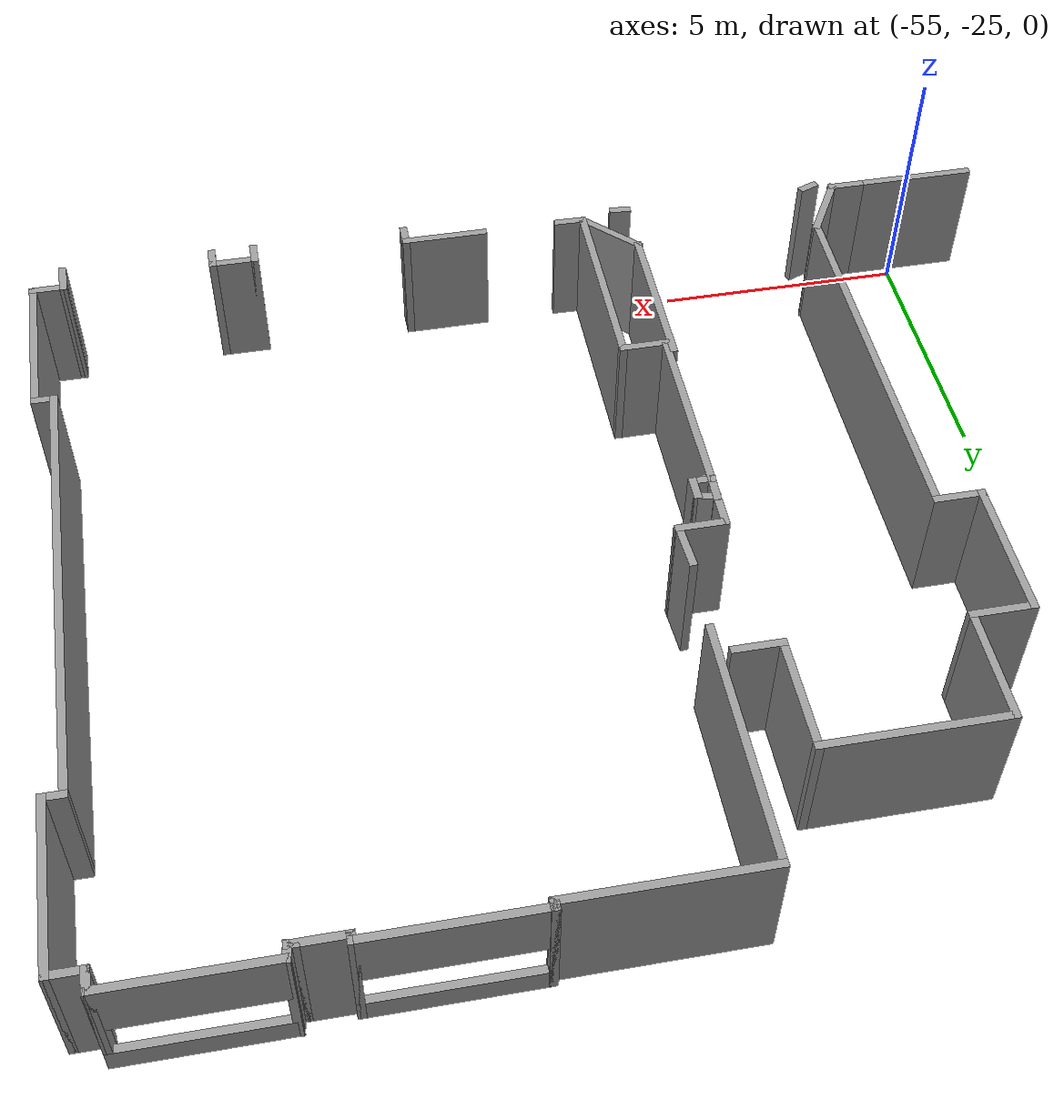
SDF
<sdf version="1.7">
 <model name="TD_n1">
  <pose>-28.4203 -15.5404 0 0 -0 0</pose>
  <link name="Wall_10">
   <collision name="Wall_10_Collision">
    <geometry><box><size>3.25 0.15 2.5</size></box></geometry>
    <pose>0 0 1.25 0 -0 0</pose>
   </collision>
   <visual name="Wall_10_Visual">
    <pose>0 0 1.25 0 -0 0</pose>
    <geometry><box><size>3.25 0.15 2.5</size></box></geometry>
    <material>
     <script><uri>file://media/materials/scripts/gazebo.material</uri><name>Gazebo/Grey</name></script>
     <ambient>1 1 1 1</ambient>
    </material>
    <meta><layer>0</layer></meta>
   </visual>
   <pose>-8.40541 -7.90104 0 0 -0 -1.5708</pose>
  </link>
  <link name="Wall_104">
   <collision name="Wall_104_Collision">
    <geometry><box><size>0.437291 0.15 2.5</size></box></geometry>
    <pose>0 0 1.25 0 -0 0</pose>
   </collision>
   <visual name="Wall_104_Visual">
    <pose>0 0 1.25 0 -0 0</pose>
    <geometry><box><size>0.437291 0.15 2.5</size></box></geometry>
    <material>
     <script><uri>file://media/materials/scripts/gazebo.material</uri><name>Gazebo/Grey</name></script>
     <ambient>1 1 1 1</ambient>
    </material>
    <meta><layer>0</layer></meta>
   </visual>
   <pose>-20.4746 -9.7842 0 0 -0 -0.104877</pose>
  </link>
  <link name="Wall_15">
   <collision name="Wall_15_Collision">
    <geometry><box><size>0.75 0.15 2.5</size></box></geometry>
    <pose>0 0 1.25 0 -0 0</pose>
   </collision>
   <visual name="Wall_15_Visual">
    <pose>0 0 1.25 0 -0 0</pose>
    <geometry><box><size>0.75 0.15 2.5</size></box></geometry>
    <material>
     <script><uri>file://media/materials/scripts/gazebo.material</uri><name>Gazebo/Grey</name></script>
     <ambient>1 1 1 1</ambient>
    </material>
    <meta><layer>0</layer></meta>
   </visual>
   <pose>-8.70541 -9.45104 0 0 -0 0</pose>
  </link>
  <link name="Wall_17">
   <collision name="Wall_17_Collision">
    <geometry><box><size>0.658615 0.15 2.5</size></box></geometry>
    <pose>0 0 1.25 0 -0 0</pose>
   </collision>
   <visual name="Wall_17_Visual">
    <pose>0 0 1.25 0 -0 0</pose>
    <geometry><box><size>0.658615 0.15 2.5</size></box></geometry>
    <material>
     <script><uri>file://media/materials/scripts/gazebo.material</uri><name>Gazebo/Grey</name></script>
     <ambient>1 1 1 1</ambient>
    </material>
    <meta><layer>0</layer></meta>
   </visual>
   <pose>-9.00103 -9.70531 0 0 -0 1.588</pose>
  </link>
  <link name="Wall_2">
   <pose>-10.4734 5.94896 0 0 -0 0</pose>
   <visual name="Wall_2_Visual_0">
    <pose>-1.52604 0 1.25 0 -0 0</pose>
    <geometry><box><size>0.033869 0.15 2.5</size></box></geometry>
    <material>
     <script><uri>file://media/materials/scripts/gazebo.material</uri><name>Gazebo/Grey</name></script>
     <ambient>1 1 1 1</ambient>
    </material>
    <meta><layer>0</layer></meta>
   </visual>
   <collision name="Wall_2_Collision_0">
    <geometry><box><size>0.033869 0.15 2.5</size></box></geometry>
    <pose>-1.52604 0 1.25 0 -0 0</pose>
   </collision>
   <visual name="Wall_2_Visual_1">
    <pose>0.016935 0 0.25 0 -0 0</pose>
    <geometry><box><size>3.05208 0.15 0.5</size></box></geometry>
    <material>
     <script><uri>file://media/materials/scripts/gazebo.material</uri><name>Gazebo/Grey</name></script>
     <ambient>1 1 1 1</ambient>
    </material>
    <meta><layer>0</layer></meta>
   </visual>
   <collision name="Wall_2_Collision_1">
    <geometry><box><size>3.05208 0.15 0.5</size></box></geometry>
    <pose>0.016935 0 0.25 0 -0 0</pose>
   </collision>
   <visual name="Wall_2_Visual_2">
    <pose>1.51693 0 1.5 0 -0 0</pose>
    <geometry><box><size>0.052081 0.15 2</size></box></geometry>
    <material>
     <script><uri>file://media/materials/scripts/gazebo.material</uri><name>Gazebo/Grey</name></script>
     <ambient>1 1 1 1</ambient>
    </material>
    <meta><layer>0</layer></meta>
   </visual>
   <collision name="Wall_2_Collision_2">
    <geometry><box><size>0.052081 0.15 2</size></box></geometry>
    <pose>1.51693 0 1.5 0 -0 0</pose>
   </collision>
   <visual name="Wall_2_Visual_3">
    <pose>-0.009106 0 1.9 0 -0 0</pose>
    <geometry><box><size>3 0.15 1.2</size></box></geometry>
    <material>
     <script><uri>file://media/materials/scripts/gazebo.material</uri><name>Gazebo/Grey</name></script>
     <ambient>1 1 1 1</ambient>
    </material>
    <meta><layer>0</layer></meta>
   </visual>
   <collision name="Wall_2_Collision_3">
    <geometry><box><size>3 0.15 1.2</size></box></geometry>
    <pose>-0.009106 0 1.9 0 -0 0</pose>
   </collision>
  </link>
  <link name="Wall_21">
   <collision name="Wall_21_Collision">
    <geometry><box><size>0.5 0.15 2.5</size></box></geometry>
    <pose>0 0 1.25 0 -0 0</pose>
   </collision>
   <visual name="Wall_21_Visual">
    <pose>0 0 1.25 0 -0 0</pose>
    <geometry><box><size>0.5 0.15 2.5</size></box></geometry>
    <material>
     <script><uri>file://media/materials/scripts/gazebo.material</uri><name>Gazebo/Grey</name></script>
     <ambient>1 1 1 1</ambient>
    </material>
    <meta><layer>0</layer></meta>
   </visual>
   <pose>-11.9967 -9.78458 0 0 -0 1.5708</pose>
  </link>
  <link name="Wall_22">
   <collision name="Wall_22_Collision">
    <geometry><box><size>1 0.15 2.5</size></box></geometry>
    <pose>0 0 1.25 0 -0 0</pose>
   </collision>
   <visual name="Wall_22_Visual">
    <pose>0 0 1.25 0 -0 0</pose>
    <geometry><box><size>1 0.15 2.5</size></box></geometry>
    <material>
     <script><uri>file://media/materials/scripts/gazebo.material</uri><name>Gazebo/Grey</name></script>
     <ambient>1 1 1 1</ambient>
    </material>
    <meta><layer>0</layer></meta>
   </visual>
   <pose>-12.4217 -9.60958 0 0 -0 3.14159</pose>
  </link>
  <link name="Wall_23">
   <collision name="Wall_23_Collision">
    <geometry><box><size>0.5 0.15 2.5</size></box></geometry>
    <pose>0 0 1.25 0 -0 0</pose>
   </collision>
   <visual name="Wall_23_Visual">
    <pose>0 0 1.25 0 -0 0</pose>
    <geometry><box><size>0.5 0.15 2.5</size></box></geometry>
    <material>
     <script><uri>file://media/materials/scripts/gazebo.material</uri><name>Gazebo/Grey</name></script>
     <ambient>1 1 1 1</ambient>
    </material>
    <meta><layer>0</layer></meta>
   </visual>
   <pose>-12.8467 -9.78458 0 0 -0 -1.5708</pose>
  </link>
  <link name="Wall_25">
   <collision name="Wall_25_Collision">
    <geometry><box><size>0.5 0.15 2.5</size></box></geometry>
    <pose>0 0 1.25 0 -0 0</pose>
   </collision>
   <visual name="Wall_25_Visual">
    <pose>0 0 1.25 0 -0 0</pose>
    <geometry><box><size>0.5 0.15 2.5</size></box></geometry>
    <material>
     <script><uri>file://media/materials/scripts/gazebo.material</uri><name>Gazebo/Grey</name></script>
     <ambient>1 1 1 1</ambient>
    </material>
    <meta><layer>0</layer></meta>
   </visual>
   <pose>-15.9467 -9.78458 0 0 -0 1.5708</pose>
  </link>
  <link name="Wall_26">
   <collision name="Wall_26_Collision">
    <geometry><box><size>1.75 0.15 2.5</size></box></geometry>
    <pose>0 0 1.25 0 -0 0</pose>
   </collision>
   <visual name="Wall_26_Visual">
    <pose>0 0 1.25 0 -0 0</pose>
    <geometry><box><size>1.75 0.15 2.5</size></box></geometry>
    <material>
     <script><uri>file://media/materials/scripts/gazebo.material</uri><name>Gazebo/Grey</name></script>
     <ambient>1 1 1 1</ambient>
    </material>
    <meta><layer>0</layer></meta>
   </visual>
   <pose>-16.7467 -9.60958 0 0 -0 3.14159</pose>
  </link>
  <link name="Wall_28">
   <collision name="Wall_28_Collision">
    <geometry><box><size>4 0.15 2.5</size></box></geometry>
    <pose>0 0 1.25 0 -0 0</pose>
   </collision>
   <visual name="Wall_28_Visual">
    <pose>0 0 1.25 0 -0 0</pose>
    <geometry><box><size>4 0.15 2.5</size></box></geometry>
    <material>
     <script><uri>file://media/materials/scripts/gazebo.material</uri><name>Gazebo/Grey</name></script>
     <ambient>1 1 1 1</ambient>
    </material>
    <meta><layer>0</layer></meta>
   </visual>
   <pose>-19.6467 -7.68458 0 0 -0 1.5708</pose>
  </link>
  <link name="Wall_29">
   <collision name="Wall_29_Collision">
    <geometry><box><size>1 0.15 2.5</size></box></geometry>
    <pose>0 0 1.25 0 -0 0</pose>
   </collision>
   <visual name="Wall_29_Visual">
    <pose>0 0 1.25 0 -0 0</pose>
    <geometry><box><size>1 0.15 2.5</size></box></geometry>
    <material>
     <script><uri>file://media/materials/scripts/gazebo.material</uri><name>Gazebo/Grey</name></script>
     <ambient>1 1 1 1</ambient>
    </material>
    <meta><layer>0</layer></meta>
   </visual>
   <pose>-20.0717 -5.75958 0 0 -0 3.14159</pose>
  </link>
  <link name="Wall_3">
   <collision name="Wall_3_Collision">
    <geometry><box><size>0.5 0.15 2.5</size></box></geometry>
    <pose>0 0 1.25 0 -0 0</pose>
   </collision>
   <visual name="Wall_3_Visual">
    <pose>0 0 1.25 0 -0 0</pose>
    <geometry><box><size>0.5 0.15 2.5</size></box></geometry>
    <material>
     <script><uri>file://media/materials/scripts/gazebo.material</uri><name>Gazebo/Grey</name></script>
     <ambient>1 1 1 1</ambient>
    </material>
    <meta><layer>0</layer></meta>
   </visual>
   <pose>-9.0054 5.77396 0 0 -0 -1.5708</pose>
  </link>
  <link name="Wall_31">
   <collision name="Wall_31_Collision">
    <geometry><box><size>3.75 0.15 2.5</size></box></geometry>
    <pose>0 0 1.25 0 -0 0</pose>
   </collision>
   <visual name="Wall_31_Visual">
    <pose>0 0 1.25 0 -0 0</pose>
    <geometry><box><size>3.75 0.15 2.5</size></box></geometry>
    <material>
     <script><uri>file://media/materials/scripts/gazebo.material</uri><name>Gazebo/Grey</name></script>
     <ambient>1 1 1 1</ambient>
    </material>
    <meta><layer>0</layer></meta>
   </visual>
   <pose>-20.4967 -3.95958 0 0 -0 1.5708</pose>
  </link>
  <link name="Wall_32">
   <collision name="Wall_32_Collision">
    <geometry><box><size>0.25 0.15 2.5</size></box></geometry>
    <pose>0 0 1.25 0 -0 0</pose>
   </collision>
   <visual name="Wall_32_Visual">
    <pose>0 0 1.25 0 -0 0</pose>
    <geometry><box><size>0.25 0.15 2.5</size></box></geometry>
    <material>
     <script><uri>file://media/materials/scripts/gazebo.material</uri><name>Gazebo/Grey</name></script>
     <ambient>1 1 1 1</ambient>
    </material>
    <meta><layer>0</layer></meta>
   </visual>
   <pose>-20.4484 -2.17252 0 0 -0 -0.261799</pose>
  </link>
  <link name="Wall_34">
   <collision name="Wall_34_Collision">
    <geometry><box><size>0.5 0.15 2.5</size></box></geometry>
    <pose>0 0 1.25 0 -0 0</pose>
   </collision>
   <visual name="Wall_34_Visual">
    <pose>0 0 1.25 0 -0 0</pose>
    <geometry><box><size>0.5 0.15 2.5</size></box></geometry>
    <material>
     <script><uri>file://media/materials/scripts/gazebo.material</uri><name>Gazebo/Grey</name></script>
     <ambient>1 1 1 1</ambient>
    </material>
    <meta><layer>0</layer></meta>
   </visual>
   <pose>-20.3217 -2.15958 0 0 -0 0</pose>
  </link>
  <link name="Wall_35">
   <collision name="Wall_35_Collision">
    <geometry><box><size>0.5 0.15 2.5</size></box></geometry>
    <pose>0 0 1.25 0 -0 0</pose>
   </collision>
   <visual name="Wall_35_Visual">
    <pose>0 0 1.25 0 -0 0</pose>
    <geometry><box><size>0.5 0.15 2.5</size></box></geometry>
    <material>
     <script><uri>file://media/materials/scripts/gazebo.material</uri><name>Gazebo/Grey</name></script>
     <ambient>1 1 1 1</ambient>
    </material>
    <meta><layer>0</layer></meta>
   </visual>
   <pose>-20.1467 -1.98458 0 0 -0 1.5708</pose>
  </link>
  <link name="Wall_36">
   <collision name="Wall_36_Collision">
    <geometry><box><size>0.5 0.15 2.5</size></box></geometry>
    <pose>0 0 1.25 0 -0 0</pose>
   </collision>
   <visual name="Wall_36_Visual">
    <pose>0 0 1.25 0 -0 0</pose>
    <geometry><box><size>0.5 0.15 2.5</size></box></geometry>
    <material>
     <script><uri>file://media/materials/scripts/gazebo.material</uri><name>Gazebo/Grey</name></script>
     <ambient>1 1 1 1</ambient>
    </material>
    <meta><layer>0</layer></meta>
   </visual>
   <pose>-20.3157 -1.76429 0 0 -0 2.87979</pose>
  </link>
  <link name="Wall_39">
   <collision name="Wall_39_Collision">
    <geometry><box><size>0.75 0.15 2.5</size></box></geometry>
    <pose>0 0 1.25 0 -0 0</pose>
   </collision>
   <visual name="Wall_39_Visual">
    <pose>0 0 1.25 0 -0 0</pose>
    <geometry><box><size>0.75 0.15 2.5</size></box></geometry>
    <material>
     <script><uri>file://media/materials/scripts/gazebo.material</uri><name>Gazebo/Grey</name></script>
     <ambient>1 1 1 1</ambient>
    </material>
    <meta><layer>0</layer></meta>
   </visual>
   <pose>-20.4847 -1.419 0 0 -0 1.5708</pose>
  </link>
  <link name="Wall_4">
   <collision name="Wall_4_Collision">
    <geometry><box><size>0.75 0.15 2.5</size></box></geometry>
    <pose>0 0 1.25 0 -0 0</pose>
   </collision>
   <visual name="Wall_4_Visual">
    <pose>0 0 1.25 0 -0 0</pose>
    <geometry><box><size>0.75 0.15 2.5</size></box></geometry>
    <material>
     <script><uri>file://media/materials/scripts/gazebo.material</uri><name>Gazebo/Grey</name></script>
     <ambient>1 1 1 1</ambient>
    </material>
    <meta><layer>0</layer></meta>
   </visual>
   <pose>-8.70541 5.59896 0 0 -0 0</pose>
  </link>
  <link name="Wall_40">
   <collision name="Wall_40_Collision">
    <geometry><box><size>1 0.15 2.5</size></box></geometry>
    <pose>0 0 1.25 0 -0 0</pose>
   </collision>
   <visual name="Wall_40_Visual">
    <pose>0 0 1.25 0 -0 0</pose>
    <geometry><box><size>1 0.15 2.5</size></box></geometry>
    <material>
     <script><uri>file://media/materials/scripts/gazebo.material</uri><name>Gazebo/Grey</name></script>
     <ambient>1 1 1 1</ambient>
    </material>
    <meta><layer>0</layer></meta>
   </visual>
   <pose>-20.0597 -1.11899 0 0 -0 0</pose>
  </link>
  <link name="Wall_44">
   <collision name="Wall_44_Collision">
    <geometry><box><size>3.75 0.15 2.5</size></box></geometry>
    <pose>0 0 1.25 0 -0 0</pose>
   </collision>
   <visual name="Wall_44_Visual">
    <pose>0 0 1.25 0 -0 0</pose>
    <geometry><box><size>3.75 0.15 2.5</size></box></geometry>
    <material>
     <script><uri>file://media/materials/scripts/gazebo.material</uri><name>Gazebo/Grey</name></script>
     <ambient>1 1 1 1</ambient>
    </material>
    <meta><layer>0</layer></meta>
   </visual>
   <pose>-17.8347 5.73101 0 0 -0 0</pose>
  </link>
  <link name="Wall_45">
   <collision name="Wall_45_Collision">
    <geometry><box><size>0.25 0.15 2.5</size></box></geometry>
    <pose>0 0 1.25 0 -0 0</pose>
   </collision>
   <visual name="Wall_45_Visual">
    <pose>0 0 1.25 0 -0 0</pose>
    <geometry><box><size>0.25 0.15 2.5</size></box></geometry>
    <material>
     <script><uri>file://media/materials/scripts/gazebo.material</uri><name>Gazebo/Grey</name></script>
     <ambient>1 1 1 1</ambient>
    </material>
    <meta><layer>0</layer></meta>
   </visual>
   <pose>-16.0347 5.78101 0 0 -0 1.5708</pose>
  </link>
  <link name="Wall_46">
   <pose>-14.4847 5.83101 0 0 -0 0</pose>
   <visual name="Wall_46_Visual_0">
    <pose>-1.54638 0 1.25 0 -0 0</pose>
    <geometry><box><size>0.157246 0.15 2.5</size></box></geometry>
    <material>
     <script><uri>file://media/materials/scripts/gazebo.material</uri><name>Gazebo/Grey</name></script>
     <ambient>1 1 1 1</ambient>
    </material>
    <meta><layer>0</layer></meta>
   </visual>
   <collision name="Wall_46_Collision_0">
    <geometry><box><size>0.157246 0.15 2.5</size></box></geometry>
    <pose>-1.54638 0 1.25 0 -0 0</pose>
   </collision>
   <visual name="Wall_46_Visual_1">
    <pose>0.078623 0 0.25 0 -0 0</pose>
    <geometry><box><size>3.09275 0.15 0.5</size></box></geometry>
    <material>
     <script><uri>file://media/materials/scripts/gazebo.material</uri><name>Gazebo/Grey</name></script>
     <ambient>1 1 1 1</ambient>
    </material>
    <meta><layer>0</layer></meta>
   </visual>
   <collision name="Wall_46_Collision_1">
    <geometry><box><size>3.09275 0.15 0.5</size></box></geometry>
    <pose>0.078623 0 0.25 0 -0 0</pose>
   </collision>
   <visual name="Wall_46_Visual_2">
    <pose>1.57862 0 1.5 0 -0 0</pose>
    <geometry><box><size>0.092754 0.15 2</size></box></geometry>
    <material>
     <script><uri>file://media/materials/scripts/gazebo.material</uri><name>Gazebo/Grey</name></script>
     <ambient>1 1 1 1</ambient>
    </material>
    <meta><layer>0</layer></meta>
   </visual>
   <collision name="Wall_46_Collision_2">
    <geometry><box><size>0.092754 0.15 2</size></box></geometry>
    <pose>1.57862 0 1.5 0 -0 0</pose>
   </collision>
   <visual name="Wall_46_Visual_3">
    <pose>0.032246 0 1.9 0 -0 0</pose>
    <geometry><box><size>3 0.15 1.2</size></box></geometry>
    <material>
     <script><uri>file://media/materials/scripts/gazebo.material</uri><name>Gazebo/Grey</name></script>
     <ambient>1 1 1 1</ambient>
    </material>
    <meta><layer>0</layer></meta>
   </visual>
   <collision name="Wall_46_Collision_3">
    <geometry><box><size>3 0.15 1.2</size></box></geometry>
    <pose>0.032246 0 1.9 0 -0 0</pose>
   </collision>
  </link>
  <link name="Wall_47">
   <collision name="Wall_47_Collision">
    <geometry><box><size>0.25 0.15 2.5</size></box></geometry>
    <pose>0 0 1.25 0 -0 0</pose>
   </collision>
   <visual name="Wall_47_Visual">
    <pose>0 0 1.25 0 -0 0</pose>
    <geometry><box><size>0.25 0.15 2.5</size></box></geometry>
    <material>
     <script><uri>file://media/materials/scripts/gazebo.material</uri><name>Gazebo/Grey</name></script>
     <ambient>1 1 1 1</ambient>
    </material>
    <meta><layer>0</layer></meta>
   </visual>
   <pose>-12.9347 5.78101 0 0 -0 -1.5708</pose>
  </link>
  <link name="Wall_48">
   <collision name="Wall_48_Collision">
    <geometry><box><size>1 0.15 2.5</size></box></geometry>
    <pose>0 0 1.25 0 -0 0</pose>
   </collision>
   <visual name="Wall_48_Visual">
    <pose>0 0 1.25 0 -0 0</pose>
    <geometry><box><size>1 0.15 2.5</size></box></geometry>
    <material>
     <script><uri>file://media/materials/scripts/gazebo.material</uri><name>Gazebo/Grey</name></script>
     <ambient>1 1 1 1</ambient>
    </material>
    <meta><layer>0</layer></meta>
   </visual>
   <pose>-12.5097 5.73101 0 0 -0 0</pose>
  </link>
  <link name="Wall_49">
   <collision name="Wall_49_Collision">
    <geometry><box><size>0.25 0.15 2.5</size></box></geometry>
    <pose>0 0 1.25 0 -0 0</pose>
   </collision>
   <visual name="Wall_49_Visual">
    <pose>0 0 1.25 0 -0 0</pose>
    <geometry><box><size>0.25 0.15 2.5</size></box></geometry>
    <material>
     <script><uri>file://media/materials/scripts/gazebo.material</uri><name>Gazebo/Grey</name></script>
     <ambient>1 1 1 1</ambient>
    </material>
    <meta><layer>0</layer></meta>
   </visual>
   <pose>-12.0347 5.73101 0 0 -0 0</pose>
  </link>
  <link name="Wall_5">
   <collision name="Wall_5_Collision">
    <geometry><box><size>3.25 0.15 2.5</size></box></geometry>
    <pose>0 0 1.25 0 -0 0</pose>
   </collision>
   <visual name="Wall_5_Visual">
    <pose>0 0 1.25 0 -0 0</pose>
    <geometry><box><size>3.25 0.15 2.5</size></box></geometry>
    <material>
     <script><uri>file://media/materials/scripts/gazebo.material</uri><name>Gazebo/Grey</name></script>
     <ambient>1 1 1 1</ambient>
    </material>
    <meta><layer>0</layer></meta>
   </visual>
   <pose>-8.40541 4.04896 0 0 -0 -1.5708</pose>
  </link>
  <link name="Wall_50">
   <collision name="Wall_50_Collision">
    <geometry><box><size>0.372228 0.15 2.5</size></box></geometry>
    <pose>0 0 1.25 0 -0 0</pose>
   </collision>
   <visual name="Wall_50_Visual">
    <pose>0 0 1.25 0 -0 0</pose>
    <geometry><box><size>0.372228 0.15 2.5</size></box></geometry>
    <material>
     <script><uri>file://media/materials/scripts/gazebo.material</uri><name>Gazebo/Grey</name></script>
     <ambient>1 1 1 1</ambient>
    </material>
    <meta><layer>0</layer></meta>
   </visual>
   <pose>-11.963 5.83998 0 0 -0 1.37435</pose>
  </link>
  <link name="Wall_52">
   <collision name="Wall_52_Collision">
    <geometry><box><size>1 0.15 2.5</size></box></geometry>
    <pose>0 0 1.25 0 -0 0</pose>
   </collision>
   <visual name="Wall_52_Visual">
    <pose>0 0 1.25 0 -0 0</pose>
    <geometry><box><size>1 0.15 2.5</size></box></geometry>
    <material>
     <script><uri>file://media/materials/scripts/gazebo.material</uri><name>Gazebo/Grey</name></script>
     <ambient>1 1 1 1</ambient>
    </material>
    <meta><layer>0</layer></meta>
   </visual>
   <pose>-20.3453 1.65031 0 0 -0 3.14159</pose>
  </link>
  <link name="Wall_53">
   <collision name="Wall_53_Collision">
    <geometry><box><size>2.25 0.15 2.5</size></box></geometry>
    <pose>0 0 1.25 0 -0 0</pose>
   </collision>
   <visual name="Wall_53_Visual">
    <pose>0 0 1.25 0 -0 0</pose>
    <geometry><box><size>2.25 0.15 2.5</size></box></geometry>
    <material>
     <script><uri>file://media/materials/scripts/gazebo.material</uri><name>Gazebo/Grey</name></script>
     <ambient>1 1 1 1</ambient>
    </material>
    <meta><layer>0</layer></meta>
   </visual>
   <pose>-20.7703 2.70031 0 0 -0 1.5708</pose>
  </link>
  <link name="Wall_54">
   <collision name="Wall_54_Collision">
    <geometry><box><size>3.5 0.15 2.5</size></box></geometry>
    <pose>0 0 1.25 0 -0 0</pose>
   </collision>
   <visual name="Wall_54_Visual">
    <pose>0 0 1.25 0 -0 0</pose>
    <geometry><box><size>3.5 0.15 2.5</size></box></geometry>
    <material>
     <script><uri>file://media/materials/scripts/gazebo.material</uri><name>Gazebo/Grey</name></script>
     <ambient>1 1 1 1</ambient>
    </material>
    <meta><layer>0</layer></meta>
   </visual>
   <pose>-22.4453 3.75031 0 0 -0 3.14159</pose>
  </link>
  <link name="Wall_55">
   <collision name="Wall_55_Collision">
    <geometry><box><size>2.25 0.15 2.5</size></box></geometry>
    <pose>0 0 1.25 0 -0 0</pose>
   </collision>
   <visual name="Wall_55_Visual">
    <pose>0 0 1.25 0 -0 0</pose>
    <geometry><box><size>2.25 0.15 2.5</size></box></geometry>
    <material>
     <script><uri>file://media/materials/scripts/gazebo.material</uri><name>Gazebo/Grey</name></script>
     <ambient>1 1 1 1</ambient>
    </material>
    <meta><layer>0</layer></meta>
   </visual>
   <pose>-24.1203 2.70031 0 0 -0 -1.5708</pose>
  </link>
  <link name="Wall_56">
   <collision name="Wall_56_Collision">
    <geometry><box><size>1.25 0.15 2.5</size></box></geometry>
    <pose>0 0 1.25 0 -0 0</pose>
   </collision>
   <visual name="Wall_56_Visual">
    <pose>0 0 1.25 0 -0 0</pose>
    <geometry><box><size>1.25 0.15 2.5</size></box></geometry>
    <material>
     <script><uri>file://media/materials/scripts/gazebo.material</uri><name>Gazebo/Grey</name></script>
     <ambient>1 1 1 1</ambient>
    </material>
    <meta><layer>0</layer></meta>
   </visual>
   <pose>-24.6703 1.65031 0 0 -0 3.14159</pose>
  </link>
  <link name="Wall_57">
   <collision name="Wall_57_Collision">
    <geometry><box><size>2.75 0.15 2.5</size></box></geometry>
    <pose>0 0 1.25 0 -0 0</pose>
   </collision>
   <visual name="Wall_57_Visual">
    <pose>0 0 1.25 0 -0 0</pose>
    <geometry><box><size>2.75 0.15 2.5</size></box></geometry>
    <material>
     <script><uri>file://media/materials/scripts/gazebo.material</uri><name>Gazebo/Grey</name></script>
     <ambient>1 1 1 1</ambient>
    </material>
    <meta><layer>0</layer></meta>
   </visual>
   <pose>-25.2203 0.350309 0 0 -0 -1.5708</pose>
  </link>
  <link name="Wall_58">
   <collision name="Wall_58_Collision">
    <geometry><box><size>1 0.15 2.5</size></box></geometry>
    <pose>0 0 1.25 0 -0 0</pose>
   </collision>
   <visual name="Wall_58_Visual">
    <pose>0 0 1.25 0 -0 0</pose>
    <geometry><box><size>1 0.15 2.5</size></box></geometry>
    <material>
     <script><uri>file://media/materials/scripts/gazebo.material</uri><name>Gazebo/Grey</name></script>
     <ambient>1 1 1 1</ambient>
    </material>
    <meta><layer>0</layer></meta>
   </visual>
   <pose>-24.7953 -0.94969 0 0 -0 0</pose>
  </link>
  <link name="Wall_6">
   <collision name="Wall_6_Collision">
    <geometry><box><size>0.5 0.15 2.5</size></box></geometry>
    <pose>0 0 1.25 0 -0 0</pose>
   </collision>
   <visual name="Wall_6_Visual">
    <pose>0 0 1.25 0 -0 0</pose>
    <geometry><box><size>0.5 0.15 2.5</size></box></geometry>
    <material>
     <script><uri>file://media/materials/scripts/gazebo.material</uri><name>Gazebo/Grey</name></script>
     <ambient>1 1 1 1</ambient>
    </material>
    <meta><layer>0</layer></meta>
   </visual>
   <pose>-8.58041 2.49896 0 0 -0 3.14159</pose>
  </link>
  <link name="Wall_60">
   <collision name="Wall_60_Collision">
    <geometry><box><size>7.75 0.15 2.5</size></box></geometry>
    <pose>0 0 1.25 0 -0 0</pose>
   </collision>
   <visual name="Wall_60_Visual">
    <pose>0 0 1.25 0 -0 0</pose>
    <geometry><box><size>7.75 0.15 2.5</size></box></geometry>
    <material>
     <script><uri>file://media/materials/scripts/gazebo.material</uri><name>Gazebo/Grey</name></script>
     <ambient>1 1 1 1</ambient>
    </material>
    <meta><layer>0</layer></meta>
   </visual>
   <pose>-24.3703 -4.74969 0 0 -0 -1.5708</pose>
  </link>
  <link name="Wall_62">
   <collision name="Wall_62_Collision">
    <geometry><box><size>1.5 0.15 2.5</size></box></geometry>
    <pose>0 0 1.25 0 -0 0</pose>
   </collision>
   <visual name="Wall_62_Visual">
    <pose>0 0 1.25 0 -0 0</pose>
    <geometry><box><size>1.5 0.15 2.5</size></box></geometry>
    <material>
     <script><uri>file://media/materials/scripts/gazebo.material</uri><name>Gazebo/Grey</name></script>
     <ambient>1 1 1 1</ambient>
    </material>
    <meta><layer>0</layer></meta>
   </visual>
   <pose>-24.7078 -9.13426 0 0 -0 -2.0944</pose>
  </link>
  <link name="Wall_63">
   <collision name="Wall_63_Collision">
    <geometry><box><size>0.75 0.15 2.5</size></box></geometry>
    <pose>0 0 1.25 0 -0 0</pose>
   </collision>
   <visual name="Wall_63_Visual">
    <pose>0 0 1.25 0 -0 0</pose>
    <geometry><box><size>0.75 0.15 2.5</size></box></geometry>
    <material>
     <script><uri>file://media/materials/scripts/gazebo.material</uri><name>Gazebo/Grey</name></script>
     <ambient>1 1 1 1</ambient>
    </material>
    <meta><layer>0</layer></meta>
   </visual>
   <pose>-25.3453 -9.71882 0 0 -0 3.14159</pose>
  </link>
  <link name="Wall_64">
   <collision name="Wall_64_Collision">
    <geometry><box><size>2.5 0.15 2.5</size></box></geometry>
    <pose>0 0 1.25 0 -0 0</pose>
   </collision>
   <visual name="Wall_64_Visual">
    <pose>0 0 1.25 0 -0 0</pose>
    <geometry><box><size>2.5 0.15 2.5</size></box></geometry>
    <material>
     <script><uri>file://media/materials/scripts/gazebo.material</uri><name>Gazebo/Grey</name></script>
     <ambient>1 1 1 1</ambient>
    </material>
    <meta><layer>0</layer></meta>
   </visual>
   <pose>-26.8203 -9.71882 0 0 -0 3.14159</pose>
  </link>
  <link name="Wall_8">
   <collision name="Wall_8_Collision">
    <geometry><box><size>9 0.15 2.5</size></box></geometry>
    <pose>0 0 1.25 0 -0 0</pose>
   </collision>
   <visual name="Wall_8_Visual">
    <pose>0 0 1.25 0 -0 0</pose>
    <geometry><box><size>9 0.15 2.5</size></box></geometry>
    <material>
     <script><uri>file://media/materials/scripts/gazebo.material</uri><name>Gazebo/Grey</name></script>
     <ambient>1 1 1 1</ambient>
    </material>
    <meta><layer>0</layer></meta>
   </visual>
   <pose>-8.7554 -1.92604 0 0 -0 -1.5708</pose>
  </link>
  <link name="Wall_86">
   <collision name="Wall_86_Collision">
    <geometry><box><size>1.5 0.15 2.5</size></box></geometry>
    <pose>0 0 1.25 0 -0 0</pose>
   </collision>
   <visual name="Wall_86_Visual">
    <pose>0 0 1.25 0 -0 0</pose>
    <geometry><box><size>1.5 0.15 2.5</size></box></geometry>
    <material>
     <script><uri>file://media/materials/scripts/gazebo.material</uri><name>Gazebo/Grey</name></script>
     <ambient>1 1 1 1</ambient>
    </material>
    <meta><layer>0</layer></meta>
   </visual>
   <pose>-20.124 -9.13228 0 0 -0 2.35619</pose>
  </link>
  <link name="Wall_88">
   <collision name="Wall_88_Collision">
    <geometry><box><size>3.25 0.15 2.5</size></box></geometry>
    <pose>0 0 1.25 0 -0 0</pose>
   </collision>
   <visual name="Wall_88_Visual">
    <pose>0 0 1.25 0 -0 0</pose>
    <geometry><box><size>3.25 0.15 2.5</size></box></geometry>
    <material>
     <script><uri>file://media/materials/scripts/gazebo.material</uri><name>Gazebo/Grey</name></script>
     <ambient>1 1 1 1</ambient>
    </material>
    <meta><layer>0</layer></meta>
   </visual>
   <pose>-20.6013 -7.10499 0 0 -0 1.5708</pose>
  </link>
  <link name="Wall_9">
   <collision name="Wall_9_Collision">
    <geometry><box><size>0.5 0.15 2.5</size></box></geometry>
    <pose>0 0 1.25 0 -0 0</pose>
   </collision>
   <visual name="Wall_9_Visual">
    <pose>0 0 1.25 0 -0 0</pose>
    <geometry><box><size>0.5 0.15 2.5</size></box></geometry>
    <material>
     <script><uri>file://media/materials/scripts/gazebo.material</uri><name>Gazebo/Grey</name></script>
     <ambient>1 1 1 1</ambient>
    </material>
    <meta><layer>0</layer></meta>
   </visual>
   <pose>-8.58041 -6.35104 0 0 -0 0</pose>
  </link>
  <link name="Wall_90">
   <collision name="Wall_90_Collision">
    <geometry><box><size>0.590748 0.15 2.5</size></box></geometry>
    <pose>0 0 1.25 0 -0 0</pose>
   </collision>
   <visual name="Wall_90_Visual">
    <pose>0 0 1.25 0 -0 0</pose>
    <geometry><box><size>0.590748 0.15 2.5</size></box></geometry>
    <material>
     <script><uri>file://media/materials/scripts/gazebo.material</uri><name>Gazebo/Grey</name></script>
     <ambient>1 1 1 1</ambient>
    </material>
    <meta><layer>0</layer></meta>
   </visual>
   <pose>-20.4907 -1.93929 0 0 -0 -1.59786</pose>
  </link>
  <link name="Wall_92">
   <collision name="Wall_92_Collision">
    <geometry><box><size>0.668138 0.15 2.5</size></box></geometry>
    <pose>0 0 1.25 0 -0 0</pose>
   </collision>
   <visual name="Wall_92_Visual">
    <pose>0 0 1.25 0 -0 0</pose>
    <geometry><box><size>0.668138 0.15 2.5</size></box></geometry>
    <material>
     <script><uri>file://media/materials/scripts/gazebo.material</uri><name>Gazebo/Grey</name></script>
     <ambient>1 1 1 1</ambient>
    </material>
    <meta><layer>0</layer></meta>
   </visual>
   <pose>-19.3877 -9.61575 0 0 -0 -0.023827</pose>
  </link>
  <link name="Wall_94">
   <collision name="Wall_94_Collision">
    <geometry><box><size>4.75 0.15 2.5</size></box></geometry>
    <pose>0 0 1.25 0 -0 0</pose>
   </collision>
   <visual name="Wall_94_Visual">
    <pose>0 0 1.25 0 -0 0</pose>
    <geometry><box><size>4.75 0.15 2.5</size></box></geometry>
    <material>
     <script><uri>file://media/materials/scripts/gazebo.material</uri><name>Gazebo/Grey</name></script>
     <ambient>1 1 1 1</ambient>
    </material>
    <meta><layer>0</layer></meta>
   </visual>
   <pose>-19.6347 3.431 0 0 -0 -1.5708</pose>
  </link>
  <link name="Wall_96">
   <collision name="Wall_96_Collision">
    <geometry><box><size>0.960143 0.15 2.5</size></box></geometry>
    <pose>0 0 1.25 0 -0 0</pose>
   </collision>
   <visual name="Wall_96_Visual">
    <pose>0 0 1.25 0 -0 0</pose>
    <geometry><box><size>0.960143 0.15 2.5</size></box></geometry>
    <material>
     <script><uri>file://media/materials/scripts/gazebo.material</uri><name>Gazebo/Grey</name></script>
     <ambient>1 1 1 1</ambient>
    </material>
    <meta><layer>0</layer></meta>
   </visual>
   <pose>-19.6598 -0.714699 0 0 -0 -1.50892</pose>
  </link>
  <link name="Wall_98">
   <collision name="Wall_98_Collision">
    <geometry><box><size>0.435564 0.15 2.5</size></box></geometry>
    <pose>0 0 1.25 0 -0 0</pose>
   </collision>
   <visual name="Wall_98_Visual">
    <pose>0 0 1.25 0 -0 0</pose>
    <geometry><box><size>0.435564 0.15 2.5</size></box></geometry>
    <material>
     <script><uri>file://media/materials/scripts/gazebo.material</uri><name>Gazebo/Grey</name></script>
     <ambient>1 1 1 1</ambient>
    </material>
    <meta><layer>0</layer></meta>
   </visual>
   <pose>-24.5479 -9.80112 0 0 -0 0.363393</pose>
  </link>
  <static>1</static>
 </model>
</sdf>
